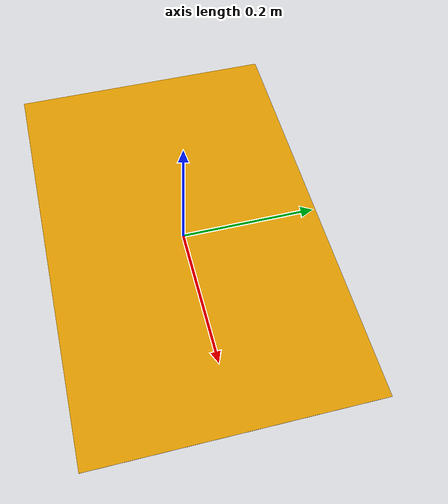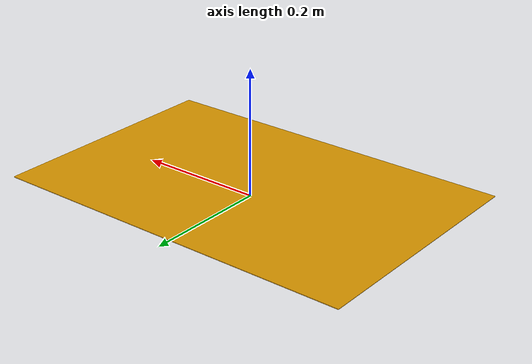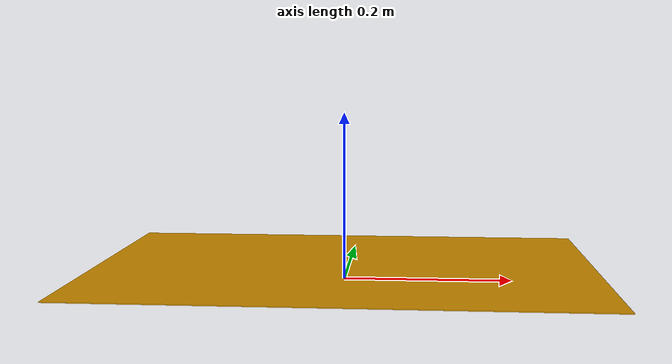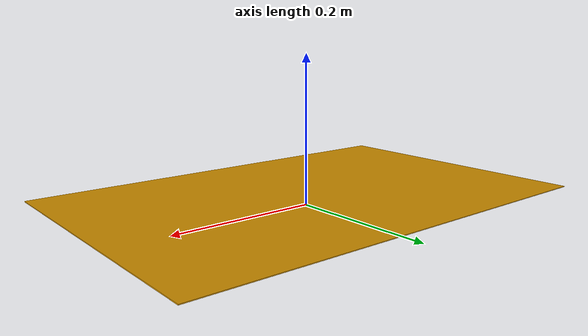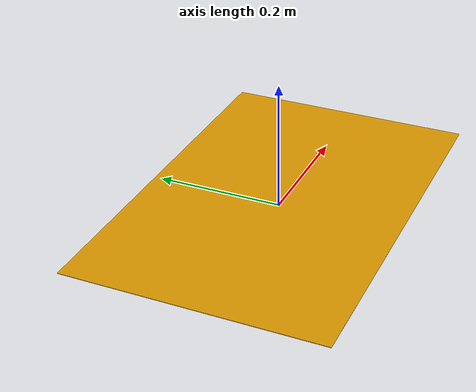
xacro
<?xml version='1.0' encoding='utf-8'?>
<robot xmlns:xacro="http://www.ros.org/wiki/xacro" name="obstacle">

    <!-- with two spheres at its caps. The capsule will always be    -->
    <!-- aligned with the axis of 'direction' you pass along.        -->
    <!-- radius: Radii of both the cylinder and both spheres [m]     -->
    <!-- length: Length of the cylinder/distance between the centers -->
    <!--         of the spheres. NOT overall length of capsule!      -->
    <!-- xyz:    Position of the center of the capsule/cylinder      -->
    <!-- direction: One of { x, y, z, -x, -y, -z }                   -->
    <xacro:macro name="collision_capsule" params="radius length xyz:='0 0 0' direction:='z'">
        <xacro:property name="r" value="${pi/2.0 if 'y' in direction else 0}" />
        <xacro:property name="p" value="${pi/2.0 if 'x' in direction else 0}" />
        <xacro:property name="y" value="0" />
        <xacro:property name="x" value="${xyz.split(' ')[0]}" />
        <xacro:property name="y" value="${xyz.split(' ')[1]}" />
        <xacro:property name="z" value="${xyz.split(' ')[2]}" />
        <!-- Sphere center offsets from center of cylinder -->
        <xacro:property name="sx" value="${length / 2.0 if 'x' in direction else 0}" />
        <xacro:property name="sy" value="${length / 2.0 if 'y' in direction else 0}" />
        <xacro:property name="sz" value="${length / 2.0 if 'z' in direction else 0}" />

        <collision>
        <origin xyz="${x} ${y} ${z}" rpy="${r} ${p} ${y}"/>
        <geometry>
            <cylinder radius="${radius}" length="${length}" />
        </geometry>
        </collision>
        <collision>
        <origin xyz="${x+sx} ${y+sy} ${z+sz}" />
        <geometry>
            <sphere radius="${radius}" />
        </geometry>
        </collision>
        <collision>
        <origin xyz="${x-sx} ${y-sy} ${z-sz}" />
        <geometry>
            <sphere radius="${radius}" />
        </geometry>
        </collision>
    </xacro:macro>

    <material name="grey">
        <color rgba=".5 .5 .5 1" />
    </material>
    <link name="obstacle1">
        <inertial>
            <origin xyz="0.0 0.0 0.0" rpy="0 0 0" />
            <mass value="0.6" />
            <inertia ixx="0.001" ixy="0.0" ixz="0.0"
                iyy="0.001" iyz="0.0"
                izz="0.001" />
        </inertial>
        <visual>
            <origin xyz="0 0 0.0155" rpy="0 0 0" />
            <geometry>
                <box size="0.597 0.397 0.001" />
            </geometry>
            <color name="grey" />
        </visual>
        <xacro:collision_capsule xyz="2.535 0 0.43" direction="x" radius="0.1"
            length="0.3" />
    </link>
</robot>
